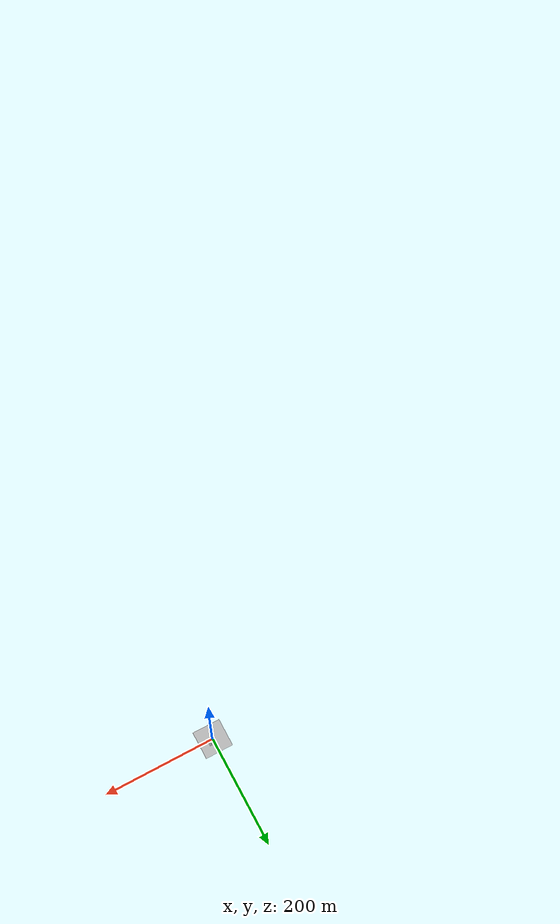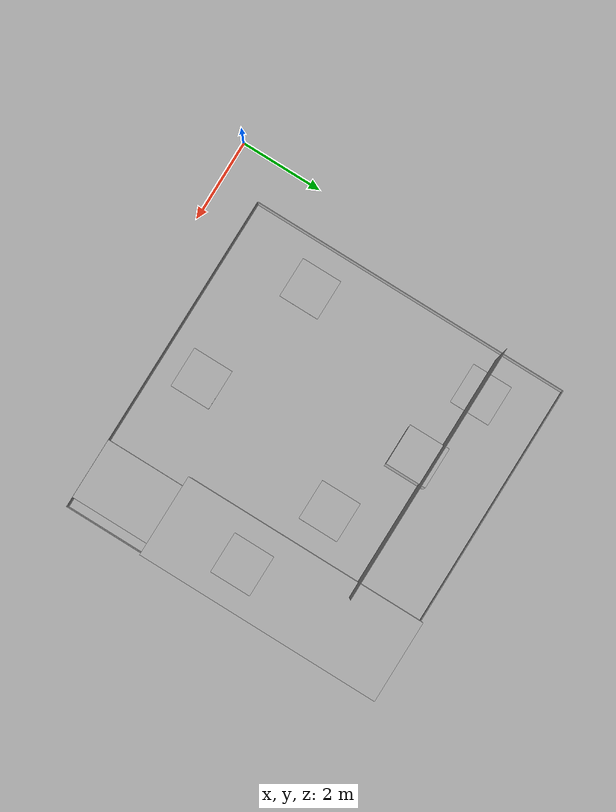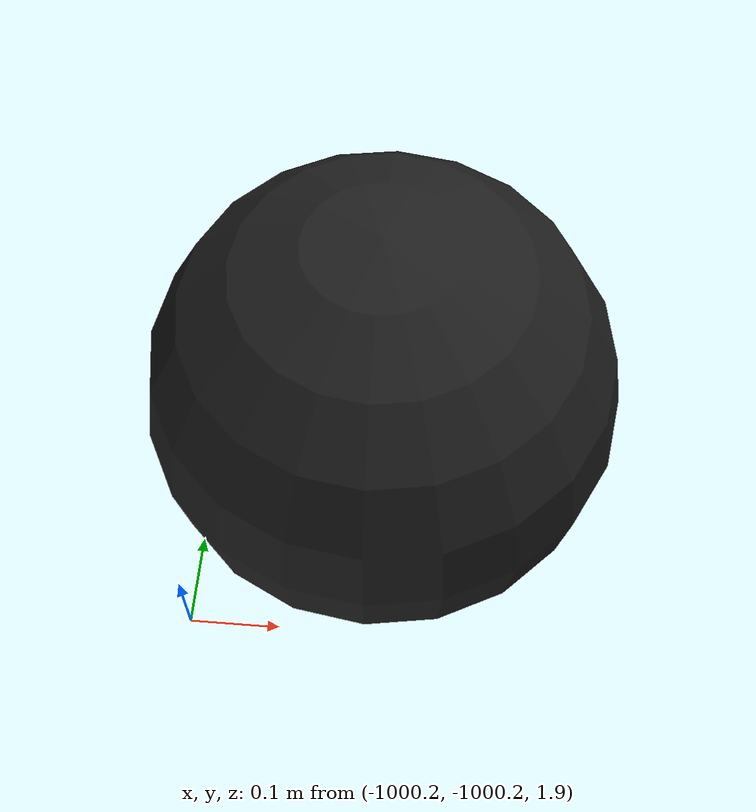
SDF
<?xml version="1.0" ?>
<sdf version="1.10">
  <world name="fase4_25">
    <physics type="ode">
      <max_step_size>0.004</max_step_size>
      <real_time_factor>1.0</real_time_factor>
      <real_time_update_rate>250</real_time_update_rate>
    </physics>

    <plugin name="gz::sim::systems::Physics" filename="gz-sim-physics-system"/>
    <plugin name="gz::sim::systems::UserCommands" filename="gz-sim-user-commands-system"/>
    <plugin name="gz::sim::systems::SceneBroadcaster" filename="gz-sim-scene-broadcaster-system"/>
    <plugin name="gz::sim::systems::Contact" filename="gz-sim-contact-system"/>
    <plugin name="gz::sim::systems::Imu" filename="gz-sim-imu-system"/>
    <plugin name="gz::sim::systems::AirPressure" filename="gz-sim-air-pressure-system"/>
    <plugin name="gz::sim::systems::ApplyLinkWrench" filename="gz-sim-apply-link-wrench-system"/>
    <plugin name="gz::sim::systems::NavSat" filename="gz-sim-navsat-system"/>
    <plugin name="gz::sim::systems::Sensors" filename="gz-sim-sensors-system">
      <render_engine>ogre2</render_engine>
    </plugin>

    <gravity>0 0 -9.8</gravity>
    <magnetic_field>6e-06 2.3e-05 -4.2e-05</magnetic_field>
    <atmosphere type="adiabatic"/>
    <spherical_coordinates>
      <surface_model>EARTH_WGS84</surface_model>
      <world_frame_orientation>ENU</world_frame_orientation>
      <latitude_deg>-23.203008</latitude_deg>
      <longitude_deg>-45.874897</longitude_deg>
      <elevation>0</elevation>
    </spherical_coordinates>
    <scene>
      <ambient>0.4 0.4 0.4 1</ambient>
      <background>0.7 0.7 0.7 1</background>
      <shadows>true</shadows>
      <sky>
        <clouds />
      </sky>
    </scene>

    <light type="directional" name="sun">
      <cast_shadows>true</cast_shadows>
      <pose>0 0 20 0 0 0</pose>
      <ambient>0.8 0.8 0.8 1</ambient>
      <diffuse>1.0 1.0 1.0 1</diffuse>
      <specular>0.2 0.2 0.2 1</specular>
      <attenuation>
        <range>1000</range>
        <constant>0.9</constant>
        <linear>0.01</linear>
        <quadratic>0.001</quadratic>
      </attenuation>
      <direction>-0.5 0.1 -0.9</direction>
    </light>

    <!-- ground plane {-->
    <model name="ground_plane">
      <static>true</static>
      <link name="link">
        <collision name="collision">
          <pose>0 0 0 0 0 0</pose>
          <geometry>
            <plane>
              <normal>0 0 1</normal>
              <size>250 250</size>
            </plane>
          </geometry>
          <surface>
            <friction>
              <ode>
                <mu>1</mu>
                <mu2>1</mu2>
              </ode>
            </friction>
          </surface>
        </collision>
        <visual name="grass">
          <pose>0 0 0 0 0 0</pose>
          <cast_shadows>false</cast_shadows>
          <geometry>
            <mesh>
              <uri>file://grass_plane/meshes/grass_plane.dae</uri>
            </mesh>
          </geometry>
        </visual>
      </link>
    </model>

    <!-- THE VOID (for spawning objects out of camera view) {-->
    <model name='the_void'>
      <static>1</static>
      <link name='link'>
        <pose frame=''>0 0 0.1 0 -0 0</pose>
        <visual name='the_void'>
          <pose frame=''>0 0 2 0 -0 0</pose>
          <geometry>
            <sphere>
              <radius>0.25</radius>
            </sphere>
          </geometry>
          <material>
            <script>
              <uri>file://media/materials/scripts/Gazebo.material</uri>
              <name>Gazebo/Black</name>
            </script>
          </material>
        </visual>
        <self_collide>0</self_collide>
        <enable_wind>0</enable_wind>
        <kinematic>0</kinematic>
      </link>
      <pose frame=''>-1000 -1000 0 0 0 0</pose>
    </model>

    <!-- user camera {-->
    <gui>
      <camera name="camera">
        <pose>-4 -4 7 0 0.4 0.89</pose>
      </camera>
    </gui>

    <!-- Models Worlds -->

    <!-- THE ARENA MODEL -->
    <model name="arena">
      <include>
        <uri>model://arena_spawn</uri>
        <!-- Pose ( x y z r p y ) -->
        <pose>1 1 0.001 0 -0 0</pose>
      </include>
    </model>

    <!-- THE TAKEOFF PLATFORM MODEL -->
    <model name="takeoff_platform">
      <include>
        <uri>model://takeoff_platform</uri>
        <pose>8.0 2.0 0.0 0.0 -0.0 0.0</pose>
      </include>
    </model>

    <!-- THE BANNER MODEL -->
    <model name="banner">
      <include>
        <uri>model://banner</uri>
        <pose>1.0 -0.6 0.29 3.14 -0 1.57</pose>
      </include>
    </model>

    <!-- THE SUSPENDED LANDING PLATFORM MODEL -->
    <model name="suspended_landing_platform">
      <include>
        <uri>model://suspended_landing_platform</uri>
        <pose>4 7 1.51 0 -0 0</pose>
      </include>
    </model>

    <!-- THE LANDING PLATFORM MODEL-->
    <model name="landing_platform_1">
      <include>
        <uri>model://landing_platform</uri>
        <pose>8 5 1.51 0 -0 0</pose>
      </include>
    </model>

    <model name="landing_platform_2">
      <include>
        <uri>model://landing_platform</uri>
        <pose>6 6 0.01 0 -0 0</pose>
      </include>
    </model>

    <model name="landing_platform_3">
      <include>
        <uri>model://landing_platform</uri>
        <pose>2 3 0.01 0 -0 0</pose>
      </include>
    </model>

    <model name="landing_platform_5">
      <include>
        <uri>model://landing_platform</uri>
        <pose> 2 7.5 0.01 0 -0 0</pose>
      </include>
    </model>

    <model name="landing_platform_6">
      <include>
        <uri>model://landing_platform</uri>
        <pose> 5 2 0.01 0 0 0</pose>
      </include>
    </model>

    <!-- clutered environment-->
    <model name="cluttered_enviroment">
      <include>
        <uri>model://cluttered_enviroment</uri>
        <pose> 8 6 0.01 0 -0 0</pose>
      </include>
    </model>

<!-- THE FIRST AID KITS -->

  </world>
</sdf>

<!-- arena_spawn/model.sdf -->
<sdf version='1.6'>
  <model name='arena_spawn'>
    <link name='link_arena'>
      <inertial>
        <mass>1</mass>
        <inertia>
          <ixx>0.166667</ixx>
          <ixy>0</ixy>
          <ixz>0</ixz>
          <iyy>0.166667</iyy>
          <iyz>0</iyz>
          <izz>0.166667</izz>
        </inertia>
      </inertial>
      <self_collide>1</self_collide>
      <enable_wind>0</enable_wind>
      <kinematic>0</kinematic>
      <pose frame=''>0 0 0 0 -0 0</pose>
      <visual name='visual'>
        <pose frame=''>0 0 0 0 -0 0</pose>
        <geometry>
          <mesh>
            <uri>model://arena_spawn/meshes/Arena.obj</uri>
            <scale>1 1 1</scale>
          </mesh>
        </geometry>
        <transparency>0</transparency>
        <cast_shadows>1</cast_shadows>
      </visual>
      <collision name='collision'>
        <laser_retro>0</laser_retro>
        <max_contacts>10</max_contacts>
        <pose frame=''>0 0 0 0 -0 0</pose>
        <geometry>
          <mesh>
            <uri>model://arena_spawn/meshes/Arena.obj</uri>
            <scale>1 1 1</scale>
          </mesh>
        </geometry>
        <surface>
          <friction>
            <ode>
              <mu>1</mu>
              <mu2>1</mu2>
              <fdir1>0 0 0</fdir1>
              <slip1>0</slip1>
              <slip2>0</slip2>
            </ode>
            <torsional>
              <coefficient>1</coefficient>
              <patch_radius>100</patch_radius>
              <surface_radius>100</surface_radius>
              <use_patch_radius>1</use_patch_radius>
              <ode>
                <slip>0</slip>
              </ode>
            </torsional>
          </friction>
          <bounce>
            <restitution_coefficient>0</restitution_coefficient>
            <threshold>1e+06</threshold>
          </bounce>
          <contact>
            <collide_without_contact>0</collide_without_contact>
            <collide_without_contact_bitmask>1</collide_without_contact_bitmask>
            <collide_bitmask>1</collide_bitmask>
            <ode>
              <soft_cfm>0</soft_cfm>
              <soft_erp>0.2</soft_erp>
              <kp>1e+13</kp>
              <kd>1</kd>
              <max_vel>0.01</max_vel>
              <min_depth>0</min_depth>
            </ode>
            <bullet>
              <split_impulse>1</split_impulse>
              <split_impulse_penetration_threshold>-0.01</split_impulse_penetration_threshold>
              <soft_cfm>0</soft_cfm>
              <soft_erp>0.2</soft_erp>
              <kp>1e+13</kp>
              <kd>1</kd>
            </bullet>
          </contact>
        </surface>
      </collision>
    </link>
    <static>1</static>
    <pose frame=''>0 0 0.0005 0 -0 0</pose>
  </model>
</sdf>

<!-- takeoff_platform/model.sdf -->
<sdf version='1.6'>
  <model name='takeoff_platform'>
    <link name='link_takeoff_platform'>
      <inertial>
        <mass>15</mass>
        <inertia>
          <ixx>1</ixx>
          <ixy>0</ixy>
          <ixz>0</ixz>
          <iyy>1</iyy>
          <iyz>0</iyz>
          <izz>1</izz>
        </inertia>
      </inertial>
      <self_collide>1</self_collide>
      <enable_wind>0</enable_wind>
      <kinematic>0</kinematic>
      <pose frame=''>0 0 0 0 -0 0</pose>
      <visual name='visual'>
        <pose frame=''>0 0 0 0 -0 0</pose>
        <geometry>
          <mesh>
            <uri>model://takeoff_platform/meshes/takeoff_platform.obj</uri>
            <scale>1 1 1</scale>
          </mesh>
        </geometry>
        <transparency>0</transparency>
        <cast_shadows>1</cast_shadows>
      </visual>
      <collision name='collision'>
        <laser_retro>0</laser_retro>
        <max_contacts>10</max_contacts>
        <pose frame=''>0 0 0 0 -0 0</pose>
        <geometry>
          <mesh>
            <uri>model://takeoff_platform/meshes/takeoff_platform.obj</uri>
            <scale>1 1 1</scale>
          </mesh>
        </geometry>
        <surface>
          <friction>
            <ode>
              <mu>1</mu>
              <mu2>1</mu2>
              <fdir1>0 0 0</fdir1>
              <slip1>0</slip1>
              <slip2>0</slip2>
            </ode>
            <torsional>
              <coefficient>1</coefficient>
              <patch_radius>100</patch_radius>
              <surface_radius>100</surface_radius>
              <use_patch_radius>1</use_patch_radius>
              <ode>
                <slip>0</slip>
              </ode>
            </torsional>
          </friction>
          <bounce>
            <restitution_coefficient>0</restitution_coefficient>
            <threshold>1e+06</threshold>
          </bounce>
          <contact>
            <collide_without_contact>0</collide_without_contact>
            <collide_without_contact_bitmask>1</collide_without_contact_bitmask>
            <collide_bitmask>1</collide_bitmask>
            <ode>
              <soft_cfm>0</soft_cfm>
              <soft_erp>0.2</soft_erp>
              <kp>1e+13</kp>
              <kd>1</kd>
              <max_vel>0.01</max_vel>
              <min_depth>0</min_depth>
            </ode>
            <bullet>
              <split_impulse>1</split_impulse>
              <split_impulse_penetration_threshold>-0.01</split_impulse_penetration_threshold>
              <soft_cfm>0</soft_cfm>
              <soft_erp>0.2</soft_erp>
              <kp>1e+13</kp>
              <kd>1</kd>
            </bullet>
          </contact>
        </surface>
      </collision>
    </link>
    <static>1</static>
    <pose frame=''>0 0 0.0005 0 -0 0</pose>
  </model>
</sdf>

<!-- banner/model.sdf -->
<sdf version='1.6'>
  <model name='banner'>
    <link name='link_0'>
      <inertial>
        <mass>1</mass>
        <inertia>
          <ixx>0.166667</ixx>
          <ixy>0</ixy>
          <ixz>0</ixz>
          <iyy>0.166667</iyy>
          <iyz>0</iyz>
          <izz>0.166667</izz>
        </inertia>
      </inertial>
      <pose>0 0 0 0 -0 0</pose>
      <visual name='visual'>
        <pose>0 0 0 0 -0 0</pose>
        <geometry>
          <mesh>
            <uri>model://banner/meshes/banner.obj</uri>
            <scale>1.0 1.0 1.0</scale>
          </mesh>
        </geometry>
        <transparency>0</transparency>
        <cast_shadows>1</cast_shadows>
      </visual>
      <collision name='collision'>
        <laser_retro>0</laser_retro>
        <max_contacts>10</max_contacts>
        <pose>0 0 0 0 -0 0</pose>
        <geometry>
          <mesh>
            <uri>model://banner/meshes/banner.obj</uri>
            <scale>1.0 1.0 1.0</scale>
          </mesh>
        </geometry>
      </collision>
    </link>
    <static>1</static>
    <allow_auto_disable>1</allow_auto_disable>
  </model>
</sdf>

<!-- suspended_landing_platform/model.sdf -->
<sdf version='1.6'>
  <model name='suspended_landing_platform'>
    <link name='link_suspended_landing_platform'>
      <inertial>
        <mass>1</mass>
        <inertia>
          <ixx>0.166667</ixx>
          <ixy>0</ixy>
          <ixz>0</ixz>
          <iyy>0.166667</iyy>
          <iyz>0</iyz>
          <izz>0.166667</izz>
        </inertia>
        <pose>0 0 0 0 -0 0</pose>
      </inertial>
      <self_collide>0</self_collide>
      <enable_wind>0</enable_wind>
      <kinematic>0</kinematic>
      <pose>0 0 0 0 -0 0</pose>
      <gravity>1</gravity>
      <visual name='visual'>
        <pose frame=''>0 0 0 0 -0 0</pose>
        <geometry>
          <mesh>
            <uri>model://suspended_landing_platform/meshes/suspended_landing_platform.obj</uri>
            <scale>1 1 1</scale>
          </mesh>
        </geometry>
        <transparency>0</transparency>
        <cast_shadows>1</cast_shadows>
      </visual>
      <collision name='collision'>
        <laser_retro>0</laser_retro>
        <max_contacts>10</max_contacts>
        <pose>0 0 -0.75 0 -0 0</pose>
        <geometry>
          <box>
            <size>1 1 1.5</size>
          </box>
        </geometry>
        <surface>
          <friction>
            <ode>
              <mu>100</mu>
              <mu2>100</mu2>
              <fdir1>0 0 0</fdir1>
              <slip1>0</slip1>
              <slip2>0</slip2>
            </ode>
            <torsional>
              <coefficient>1</coefficient>
              <patch_radius>1</patch_radius>
              <surface_radius>1</surface_radius>
              <use_patch_radius>1</use_patch_radius>
              <ode>
                <slip>0</slip>
              </ode>
            </torsional>
          </friction>
          <bounce>
            <restitution_coefficient>1</restitution_coefficient>
            <threshold>1e+06</threshold>
          </bounce>
          <contact>
            <collide_without_contact>0</collide_without_contact>
            <collide_without_contact_bitmask>1</collide_without_contact_bitmask>
            <collide_bitmask>1</collide_bitmask>
            <ode>
              <soft_cfm>0</soft_cfm>
              <soft_erp>0.2</soft_erp>
              <kp>1e+13</kp>
              <kd>1</kd>
              <max_vel>0.01</max_vel>
              <min_depth>0</min_depth>
            </ode>
            <bullet>
              <split_impulse>1</split_impulse>
              <split_impulse_penetration_threshold>-0.01</split_impulse_penetration_threshold>
              <soft_cfm>0</soft_cfm>
              <soft_erp>0.2</soft_erp>
              <kp>1e+13</kp>
              <kd>1</kd>
            </bullet>
          </contact>
        </surface>
      </collision>
    </link>
    <static>1</static>
    <allow_auto_disable>1</allow_auto_disable>
  </model>
</sdf>

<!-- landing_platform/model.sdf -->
<sdf version='1.6'>
  <model name='landing_platform'>
    <link name='link_landing_platform'>
      <inertial>
        <mass>1</mass>
        <inertia>
          <ixx>0.09318</ixx>
          <ixy>0.0</ixy>
          <ixz>0</ixz>
          <iyy>0.09318</iyy>
          <iyz>0</iyz>
          <izz>0.18634</izz>
        </inertia>
        <pose>0 0 0 0 -0 0</pose>
      </inertial>
      <self_collide>0</self_collide>
      <enable_wind>0</enable_wind>
      <kinematic>0</kinematic>
      <pose>0 0 0 0 -0 0</pose>
      <gravity>1</gravity>
      <visual name='visual'>
        <pose frame=''>0 0 0 0 -0 0</pose>
        <geometry>
          <mesh>
            <uri>model://landing_platform/meshes/landing_platform.obj</uri>
            <scale>1 1 1</scale>
          </mesh>
        </geometry>
        <transparency>0</transparency>
        <cast_shadows>1</cast_shadows>
      </visual>
      <collision name='collision'>
        <laser_retro>0</laser_retro>
        <max_contacts>10</max_contacts>
        <pose>0 0 0 0 -0 0</pose>
        <geometry>
          <box>
            <size>1 1 0.005</size>
          </box>
        </geometry>
        <surface>
          <friction>
            <ode>
              <mu>100</mu>
              <mu2>100</mu2>
              <fdir1>0 0 0</fdir1>
              <slip1>0</slip1>
              <slip2>0</slip2>
            </ode>
            <torsional>
              <coefficient>1</coefficient>
              <patch_radius>1</patch_radius>
              <surface_radius>1</surface_radius>
              <use_patch_radius>1</use_patch_radius>
              <ode>
                <slip>0</slip>
              </ode>
            </torsional>
          </friction>
          <bounce>
            <restitution_coefficient>1</restitution_coefficient>
            <threshold>1e+06</threshold>
          </bounce>
          <contact>
            <collide_without_contact>0</collide_without_contact>
            <collide_without_contact_bitmask>1</collide_without_contact_bitmask>
            <collide_bitmask>1</collide_bitmask>
            <ode>
              <soft_cfm>0</soft_cfm>
              <soft_erp>0.2</soft_erp>
              <kp>1e+13</kp>
              <kd>1</kd>
              <max_vel>0.01</max_vel>
              <min_depth>0</min_depth>
            </ode>
            <bullet>
              <split_impulse>1</split_impulse>
              <split_impulse_penetration_threshold>-0.01</split_impulse_penetration_threshold>
              <soft_cfm>0</soft_cfm>
              <soft_erp>0.2</soft_erp>
              <kp>1e+13</kp>
              <kd>1</kd>
            </bullet>
          </contact>
        </surface>
      </collision>
    </link>
    <static>1</static>
    <allow_auto_disable>1</allow_auto_disable>
  </model>
</sdf>

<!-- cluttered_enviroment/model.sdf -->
<sdf version='1.6'>
  <model name='cluttered_enviroment'>
  <static> true </static>
    <link name='link_cluttered_enviroment'>
      <pose>0 0 0 0 0 3.14159</pose>
      <visual name='visual'>
        <geometry>
          <mesh>
            <uri>model://cluttered_enviroment/meshes/cluttered_enviroment.obj</uri>
            <scale>1 1 1</scale>
          </mesh>
        </geometry>
      </visual>
      <collision name='collision'>
        <pose>0 0 0 0 0 0</pose>
        <geometry>
          <mesh>
            <uri>model://cluttered_enviroment/meshes/cluttered_enviroment.obj</uri>
            <scale>1 1 1</scale>
          </mesh>
        </geometry>
      </collision>
    </link>
  </model>
</sdf>
